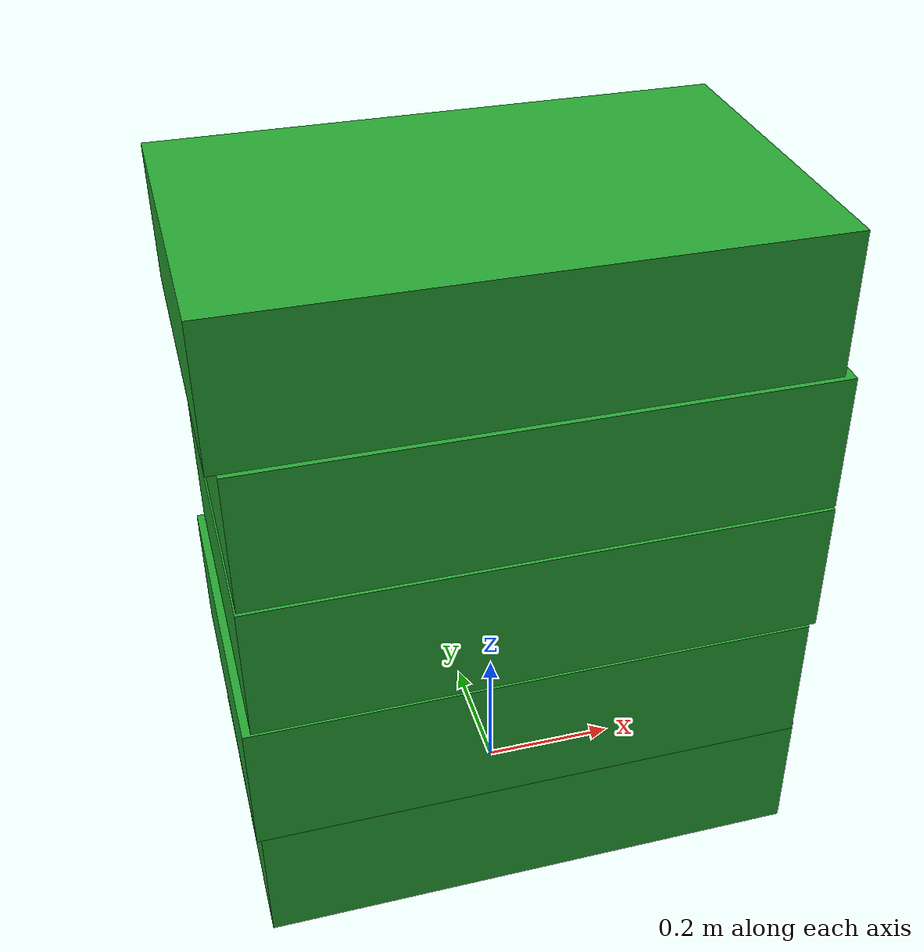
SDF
<?xml version="1.0" encoding="UTF-8"?>
<sdf version='1.4'>
    <model name="baggage_D_x5">
        <model name="baggage_D_0">
            <static>true</static>
            <link name="link">
                <collision name="collision">
                    <geometry>
                    <box>
                        <size>0.8 0.5 0.2</size>
                    </box>
                    </geometry>
                </collision>
                <visual name="visual">
                    <geometry>
                    <box>
                        <size>0.8 0.5 0.2</size>
                    </box>
                    </geometry>
                    <material>
                    <script>
                        <uri>file://media/materials/scripts/gazebo.material</uri>
                        <name>Gazebo/Green</name>
                    </script>
                    </material>
                </visual>
            </link>
            <pose frame=''>0 0 0.1 0 0 0</pose>
        </model>
        <model name="baggage_D_1">
            <static>true</static>
            <link name="link">
                <collision name="collision">
                    <geometry>
                    <box>
                        <size>0.8 0.5 0.2</size>
                    </box>
                    </geometry>
                </collision>
                <visual name="visual">
                    <geometry>
                    <box>
                        <size>0.8 0.5 0.2</size>
                    </box>
                    </geometry>
                    <material>
                    <script>
                        <uri>file://media/materials/scripts/gazebo.material</uri>
                        <name>Gazebo/Green</name>
                    </script>
                    </material>
                </visual>
            </link>
            <pose frame=''>-0.0065 -0.0092 0.3 0 0 0</pose>
        </model>
        <model name="baggage_D_2">
            <static>true</static>
            <link name="link">
                <collision name="collision">
                    <geometry>
                    <box>
                        <size>0.8 0.5 0.2</size>
                    </box>
                    </geometry>
                </collision>
                <visual name="visual">
                    <geometry>
                    <box>
                        <size>0.8 0.5 0.2</size>
                    </box>
                    </geometry>
                    <material>
                    <script>
                        <uri>file://media/materials/scripts/gazebo.material</uri>
                        <name>Gazebo/Green</name>
                    </script>
                    </material>
                </visual>
            </link>
            <pose frame=''>0.0050 -0.0052 0.5 0 0 0</pose>
        </model>
        <model name="baggage_D_3">
            <static>true</static>
            <link name="link">
                <collision name="collision">
                    <geometry>
                    <box>
                        <size>0.8 0.5 0.2</size>
                    </box>
                    </geometry>
                </collision>
                <visual name="visual">
                    <geometry>
                    <box>
                        <size>0.8 0.5 0.2</size>
                    </box>
                    </geometry>
                    <material>
                    <script>
                        <uri>file://media/materials/scripts/gazebo.material</uri>
                        <name>Gazebo/Green</name>
                    </script>
                    </material>
                </visual>
            </link>
            <pose frame=''>0.0074 0.0002 0.7 0 0 0</pose>
        </model>
        <model name="baggage_D_4">
            <static>true</static>
            <link name="link">
                <collision name="collision">
                    <geometry>
                    <box>
                        <size>0.8 0.5 0.2</size>
                    </box>
                    </geometry>
                </collision>
                <visual name="visual">
                    <geometry>
                    <box>
                        <size>0.8 0.5 0.2</size>
                    </box>
                    </geometry>
                    <material>
                    <script>
                        <uri>file://media/materials/scripts/gazebo.material</uri>
                        <name>Gazebo/Green</name>
                    </script>
                    </material>
                </visual>
            </link>
            <pose frame=''>-0.0060 0.0081 0.9 0 0 0</pose>
        </model>
    </model>
</sdf>
